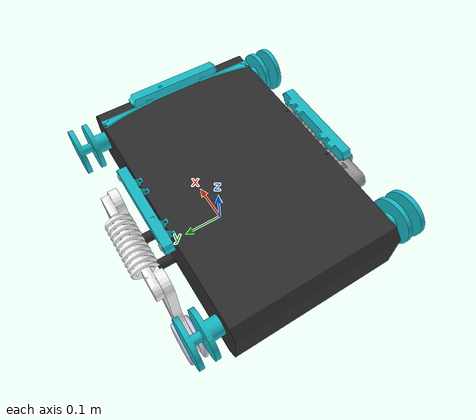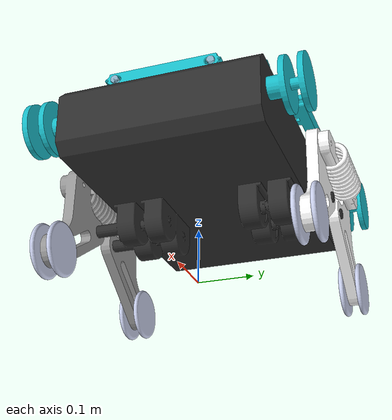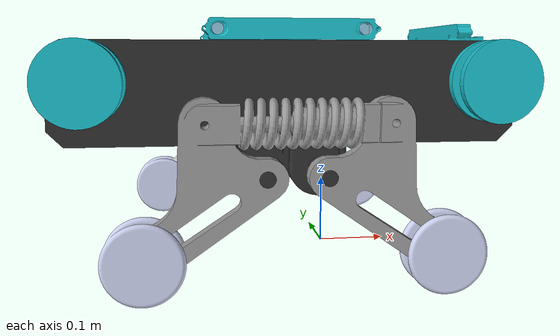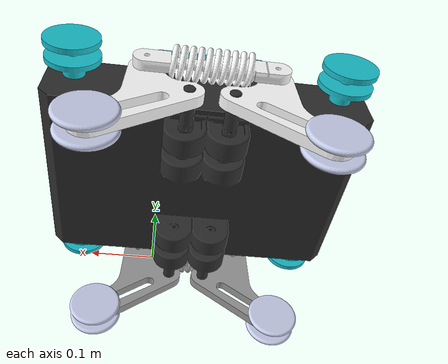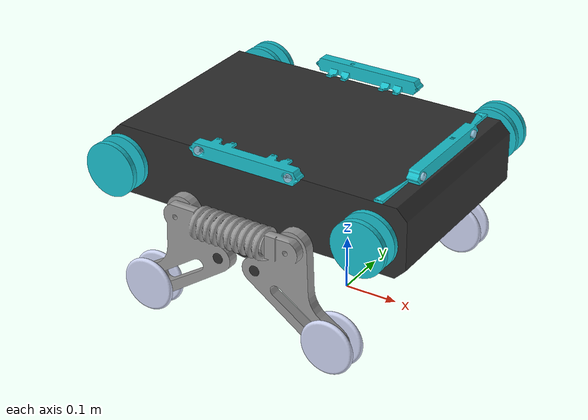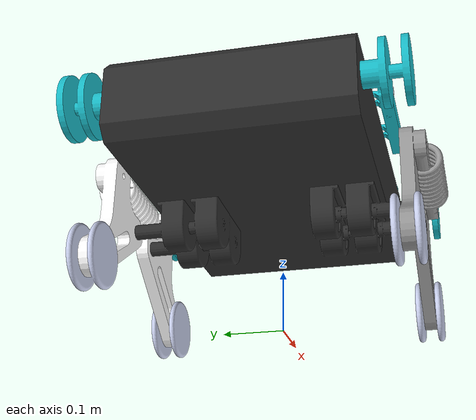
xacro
<?xml version="1.0"?>

<robot name="d-grape" xmlns:xacro="http://ros.org/wiki/xacro">

  <!-- Arguments -->
  <xacro:arg name="sim" default="true" />
  <xacro:arg name="robot_name" default="d-grape" />
  <xacro:arg name="namespace" default="" />
  <xacro:arg name="frame_prefix" default="" />

  <!-- Robot model -->
  <xacro:include filename="$(find d-grape_description)/models/urdf/d-grape_model.urdf.xacro" />

  <!-- Simulation hardware interface -->
  <xacro:if value="$(arg sim)">
    <xacro:include filename="$(find d-grape_description)/models/urdf/d-grape_sim_hardware_interface.urdf.xacro" />
  </xacro:if>

</robot>

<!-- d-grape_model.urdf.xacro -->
<robot  xmlns:xacro="http://www.ros.org/wiki/xacro">
  <xacro:property name="mesh_dir" value="$(find d-grape_description)/models/meshes" />

  <link
    name="base_link">
    <inertial>
      <origin
        xyz="-0.075544 4.6294E-10 0.18462"
        rpy="0 0 0" />
      <mass
        value="5.0268" />
      <inertia
        ixx="0.041093"
        ixy="1.0616E-07"
        ixz="2.4482E-06"
        iyy="0.074544"
        iyz="-6.2185E-11"
        izz="0.10285" />
    </inertial>
    <visual>
      <origin
        xyz="0 0 0"
        rpy="0 0 0" />
      <geometry>
        <mesh
          filename="file://${mesh_dir}/base_link.STL" />
      </geometry>
      <material
        name="">
        <color
          rgba="0.18 0.18 0.18 1" />
      </material>
    </visual>
    <collision>
      <origin
        xyz="0 0 0"
        rpy="0 0 0" />
      <geometry>
        <mesh
          filename="file://${mesh_dir}/base_link.STL" />
      </geometry>
    </collision>
  </link>
  <link
    name="front_cams">
    <inertial>
      <origin
        xyz="0.0019647 9.1194E-05 -0.012504"
        rpy="0 0 0" />
      <mass
        value="0.045237" />
      <inertia
        ixx="0.00015167"
        ixy="-2.9715E-08"
        ixz="1.0485E-08"
        iyy="3.4302E-06"
        iyz="2.1151E-08"
        izz="0.00015353" />
    </inertial>
    <visual>
      <origin
        xyz="0 0 0"
        rpy="0 0 0" />
      <geometry>
        <mesh
          filename="file://${mesh_dir}/front_cams.STL" />
      </geometry>
      <material
        name="">
        <color
          rgba="0.1 0.75294 0.8 1" />
      </material>
    </visual>
    <collision>
      <origin
        xyz="0 0 0"
        rpy="0 0 0" />
      <geometry>
        <mesh
          filename="file://${mesh_dir}/front_cams.STL" />
      </geometry>
    </collision>
  </link>
  <joint
    name="base_to_front_cams"
    type="fixed">
    <origin
      xyz="0.192 0 0.322286199982912"
      rpy="0 1.5707963267949 0" />
    <parent
      link="base_link" />
    <child
      link="front_cams" />
    <axis
      xyz="0 0 0" />
  </joint>
  <link
    name="f_left_camera">
    <inertial>
      <origin
        xyz="0 -1.3878E-17 -0.005"
        rpy="0 0 0" />
      <mass
        value="0.012007" />
      <inertia
        ixx="2.4715E-07"
        ixy="-3.816E-40"
        ixz="4.6171E-24"
        iyy="2.4715E-07"
        iyz="1.1692E-23"
        izz="2.9418E-07" />
    </inertial>
    <visual>
      <origin
        xyz="0 0 0"
        rpy="0 0 0" />
      <geometry>
        <mesh
          filename="file://${mesh_dir}/f_left_camera.STL" />
      </geometry>
      <material
        name="">
        <color
          rgba="0.79216 0.81961 0.93333 0.7" />
      </material>
    </visual>
    <collision>
      <origin
        xyz="0 0 0"
        rpy="0 0 0" />
      <geometry>
        <mesh
          filename="file://${mesh_dir}/f_left_camera.STL" />
      </geometry>
    </collision>
  </link>
  <joint
    name="base_to_f_left_camera"
    type="fixed">
    <origin
      xyz="0 0.089 0.003"
      rpy="0 0 0" />
    <parent
      link="front_cams" />
    <child
      link="f_left_camera" />
    <axis
      xyz="0 0 0" />
  </joint>
  <link
    name="f_right_camera">
    <inertial>
      <origin
        xyz="0 -1.3878E-17 -0.005"
        rpy="0 0 0" />
      <mass
        value="0.012007" />
      <inertia
        ixx="2.4715E-07"
        ixy="1.7858E-39"
        ixz="2.1704E-23"
        iyy="2.4715E-07"
        iyz="1.1692E-23"
        izz="2.9418E-07" />
    </inertial>
    <visual>
      <origin
        xyz="0 0 0"
        rpy="0 0 0" />
      <geometry>
        <mesh
          filename="file://${mesh_dir}/f_right_camera.STL" />
      </geometry>
      <material
        name="">
        <color
          rgba="0.79216 0.81961 0.93333 0.7" />
      </material>
    </visual>
    <collision>
      <origin
        xyz="0 0 0"
        rpy="0 0 0" />
      <geometry>
        <mesh
          filename="file://${mesh_dir}/f_right_camera.STL" />
      </geometry>
    </collision>
  </link>
  <joint
    name="base_to_f_right_camera"
    type="fixed">
    <origin
      xyz="0 -0.089 0.00300000000000003"
      rpy="0 0 0" />
    <parent
      link="front_cams" />
    <child
      link="f_right_camera" />
    <axis
      xyz="0 0 0" />
  </joint>
  <link
    name="left_cams">
    <inertial>
      <origin
        xyz="0.0010352 9.9915E-05 -0.011347"
        rpy="0 0 0" />
      <mass
        value="0.041289" />
      <inertia
        ixx="0.0001416"
        ixy="-2.9715E-08"
        ixz="2.0623E-08"
        iyy="3.3857E-06"
        iyz="2.1151E-08"
        izz="0.00014352" />
    </inertial>
    <visual>
      <origin
        xyz="0 0 0"
        rpy="0 0 0" />
      <geometry>
        <mesh
          filename="file://${mesh_dir}/left_cams.STL" />
      </geometry>
      <material
        name="">
        <color
          rgba="0.1 0.75294 0.8 1" />
      </material>
    </visual>
    <collision>
      <origin
        xyz="0 0 0"
        rpy="0 0 0" />
      <geometry>
        <mesh
          filename="file://${mesh_dir}/left_cams.STL" />
      </geometry>
    </collision>
  </link>
  <joint
    name="base_to_left_cams"
    type="fixed">
    <origin
      xyz="-0.0777499999999999 0.2095 0.322286199982912"
      rpy="1.5707963267949 1.5707963267949 3.14" />
    <parent
      link="base_link" />
    <child
      link="left_cams" />
    <axis
      xyz="0 0 0" />
  </joint>
  <link
    name="l_left_camera">
    <inertial>
      <origin
        xyz="0 0 -0.005"
        rpy="0 0 0" />
      <mass
        value="0.012007" />
      <inertia
        ixx="2.4715E-07"
        ixy="6.8217E-24"
        ixz="-1.0303E-23"
        iyy="2.4715E-07"
        iyz="-3.2216E-24"
        izz="2.9418E-07" />
    </inertial>
    <visual>
      <origin
        xyz="0 0 0"
        rpy="0 0 0" />
      <geometry>
        <mesh
          filename="file://${mesh_dir}/l_left_camera.STL" />
      </geometry>
      <material
        name="">
        <color
          rgba="0.79216 0.81961 0.93333 0.7" />
      </material>
    </visual>
    <collision>
      <origin
        xyz="0 0 0"
        rpy="0 0 0" />
      <geometry>
        <mesh
          filename="file://${mesh_dir}/l_left_camera.STL" />
      </geometry>
    </collision>
  </link>
  <joint
    name="base_to_l_left_camera"
    type="fixed">
    <origin
      xyz="0 0.089 0.00300000000000003"
      rpy="0 0 0" />
    <parent
      link="left_cams" />
    <child
      link="l_left_camera" />
    <axis
      xyz="0 0 1" />
  </joint>
  <link
    name="l_right_camera">
    <inertial>
      <origin
        xyz="0 0 -0.005"
        rpy="0 0 0" />
      <mass
        value="0.012007" />
      <inertia
        ixx="2.4715E-07"
        ixy="6.8217E-24"
        ixz="-1.0303E-23"
        iyy="2.4715E-07"
        iyz="-5.1795E-24"
        izz="2.9418E-07" />
    </inertial>
    <visual>
      <origin
        xyz="0 0 0"
        rpy="0 0 0" />
      <geometry>
        <mesh
          filename="file://${mesh_dir}/l_right_camera.STL" />
      </geometry>
      <material
        name="">
        <color
          rgba="0.79216 0.81961 0.93333 0.7" />
      </material>
    </visual>
    <collision>
      <origin
        xyz="0 0 0"
        rpy="0 0 0" />
      <geometry>
        <mesh
          filename="file://${mesh_dir}/l_right_camera.STL" />
      </geometry>
    </collision>
  </link>
  <joint
    name="base_to_l_right_camera"
    type="fixed">
    <origin
      xyz="0 -0.0890000000000001 0.00300000000000003"
      rpy="0 0 0" />
    <parent
      link="left_cams" />
    <child
      link="l_right_camera" />
    <axis
      xyz="0 0 0" />
  </joint>
  <link
    name="right_cams">
    <inertial>
      <origin
        xyz="0.0010352 9.9915E-05 -0.011347"
        rpy="0 0 0" />
      <mass
        value="0.041289" />
      <inertia
        ixx="0.0001416"
        ixy="-2.9715E-08"
        ixz="2.0623E-08"
        iyy="3.3857E-06"
        iyz="2.1151E-08"
        izz="0.00014352" />
    </inertial>
    <visual>
      <origin
        xyz="0 0 0"
        rpy="0 0 0" />
      <geometry>
        <mesh
          filename="file://${mesh_dir}/right_cams.STL" />
      </geometry>
      <material
        name="">
        <color
          rgba="0.1 0.75294 0.8 1" />
      </material>
    </visual>
    <collision>
      <origin
        xyz="0 0 0"
        rpy="0 0 0" />
      <geometry>
        <mesh
          filename="file://${mesh_dir}/right_cams.STL" />
      </geometry>
    </collision>
  </link>
  <joint
    name="base_to_right_cams"
    type="fixed">
    <origin
      xyz="-0.0777499999999999 -0.2095 0.322286199982912"
      rpy="1.5707963267949 -1.5707963267949 0" />
    <parent
      link="base_link" />
    <child
      link="right_cams" />
    <axis
      xyz="0 0 0" />
  </joint>
  <link
    name="r_left_camera">
    <inertial>
      <origin
        xyz="0 1.7347E-18 -0.005"
        rpy="0 0 0" />
      <mass
        value="0.012007" />
      <inertia
        ixx="2.4715E-07"
        ixy="-4.3013E-24"
        ixz="1.26E-39"
        iyy="2.4715E-07"
        iyz="-5.3767E-25"
        izz="2.9418E-07" />
    </inertial>
    <visual>
      <origin
        xyz="0 0 0"
        rpy="0 0 0" />
      <geometry>
        <mesh
          filename="file://${mesh_dir}/r_left_camera.STL" />
      </geometry>
      <material
        name="">
        <color
          rgba="0.79216 0.81961 0.93333 0.7" />
      </material>
    </visual>
    <collision>
      <origin
        xyz="0 0 0"
        rpy="0 0 0" />
      <geometry>
        <mesh
          filename="file://${mesh_dir}/r_left_camera.STL" />
      </geometry>
    </collision>
  </link>
  <joint
    name="base_to_r_left_camera"
    type="fixed">
    <origin
      xyz="0 0.089 0.003"
      rpy="0 0 0" />
    <parent
      link="right_cams" />
    <child
      link="r_left_camera" />
    <axis
      xyz="0 0 0" />
  </joint>
  <link
    name="r_right_camera">
    <inertial>
      <origin
        xyz="0 0 -0.005"
        rpy="0 0 0" />
      <mass
        value="0.012007" />
      <inertia
        ixx="2.4715E-07"
        ixy="-4.3013E-24"
        ixz="1.26E-39"
        iyy="2.4715E-07"
        iyz="-5.3767E-25"
        izz="2.9418E-07" />
    </inertial>
    <visual>
      <origin
        xyz="0 0 0"
        rpy="0 0 0" />
      <geometry>
        <mesh
          filename="file://${mesh_dir}/r_right_camera.STL" />
      </geometry>
      <material
        name="">
        <color
          rgba="0.79216 0.81961 0.93333 0.7" />
      </material>
    </visual>
    <collision>
      <origin
        xyz="0 0 0"
        rpy="0 0 0" />
      <geometry>
        <mesh
          filename="file://${mesh_dir}/r_right_camera.STL" />
      </geometry>
    </collision>
  </link>
  <joint
    name="base_to_r_right_camera"
    type="fixed">
    <origin
      xyz="0 -0.089 0.003"
      rpy="0 0 0" />
    <parent
      link="right_cams" />
    <child
      link="r_right_camera" />
    <axis
      xyz="0 0 0" />
  </joint>
  <link
    name="right_track">
    <inertial>
      <origin
        xyz="0.00094237 0.016551 -0.069043"
        rpy="0 0 0" />
      <mass
        value="5.9783" />
      <inertia
        ixx="0.016351"
        ixy="-1.2437E-06"
        ixz="-1.5016E-05"
        iyy="0.029644"
        iyz="-7.5658E-10"
        izz="0.013902" />
    </inertial>
    <visual>
      <origin
        xyz="0 0 0"
        rpy="0 0 0" />
      <geometry>
        <mesh
          filename="file://${mesh_dir}/right_track.STL" />
      </geometry>
      <material
        name="">
        <color
          rgba="0.6 0.6 0.6 1" />
      </material>
    </visual>
    <collision>
      <origin
        xyz="0 0 0"
        rpy="0 0 0" />
      <geometry>
        <mesh
          filename="file://${mesh_dir}/right_track.STL" />
      </geometry>
    </collision>
  </link>
  <joint
    name="base_to_right_track"
    type="fixed">
    <origin
      xyz="-0.0739997005257136 -0.249507806907019 0.213351418532562"
      rpy="0 0 0" />
    <parent
      link="base_link" />
    <child
      link="right_track" />
    <axis
      xyz="0 0 0" />
  </joint>
  <link
    name="right_star">
    <inertial>
      <origin
        xyz="0 0 -0.0070062"
        rpy="0 0 0" />
      <mass
        value="0.20295" />
      <inertia
        ixx="0.0001891"
        ixy="-1.409E-20"
        ixz="-3.7778E-20"
        iyy="0.0001891"
        iyz="3.0992E-21"
        izz="0.00020449" />
    </inertial>
    <visual>
      <origin
        xyz="0 0 0"
        rpy="0 0 0" />
      <geometry>
        <mesh
          filename="file://${mesh_dir}/right_star.STL" />
      </geometry>
      <material
        name="">
        <color
          rgba="0.1 0.75 0.8 1" />
      </material>
    </visual>
    <collision>
      <origin
        xyz="0 0 0"
        rpy="0 0 0" />
      <geometry>
        <mesh
          filename="file://${mesh_dir}/right_star.STL" />
      </geometry>
    </collision>
  </link>
  <joint
    name="base_to_right_star"
    type="revolute">
    <origin
      xyz="0.241 0.018008 0.046435"
      rpy="1.5708 0 0" />
    <parent
      link="right_track" />
    <child
      link="right_star" />
    <axis
      xyz="0 0 1" />
    <limit
      lower="0"
      upper="0"
      effort="0"
      velocity="0" />
  </joint>
  <link
    name="right_f_roller">
    <inertial>
      <origin
        xyz="-1.3878E-17 -6.9389E-18 5.5511E-17"
        rpy="0 0 0" />
      <mass
        value="0.16217" />
      <inertia
        ixx="0.00013098"
        ixy="2.2645E-20"
        ixz="7.2762E-21"
        iyy="0.00013098"
        iyz="1.326E-20"
        izz="0.00018157" />
    </inertial>
    <visual>
      <origin
        xyz="0 0 0"
        rpy="0 0 0" />
      <geometry>
        <mesh
          filename="file://${mesh_dir}/right_f_roller.STL" />
      </geometry>
      <material
        name="">
        <color
          rgba="0.79216 0.81961 0.93333 1" />
      </material>
    </visual>
    <collision>
      <origin
        xyz="0 0 0"
        rpy="0 0 0" />
      <geometry>
        <mesh
          filename="file://${mesh_dir}/right_f_roller.STL" />
      </geometry>
    </collision>
  </link>
  <joint
    name="base_to_right_f_roller"
    type="revolute">
    <origin
      xyz="0.18291 0.019308 -0.16335"
      rpy="1.5708 0 0" />
    <parent
      link="right_track" />
    <child
      link="right_f_roller" />
    <axis
      xyz="0 0 1" />
    <limit
      lower="0"
      upper="0"
      effort="0"
      velocity="0" />
    <mimic
      joint="base_to_right_star"
      multiplier="1"
      offset="0" />
  </joint>
  <link
    name="right_b_roller">
    <inertial>
      <origin
        xyz="0 0 0"
        rpy="0 0 0" />
      <mass
        value="0.162168751410081" />
      <inertia
        ixx="0.000130984876872724"
        ixy="3.10578747326577E-22"
        ixz="-2.26769342200741E-21"
        iyy="0.000130984876872724"
        iyz="-2.32934060494928E-22"
        izz="0.000181568887144003" />
    </inertial>
    <visual>
      <origin
        xyz="0 0 0"
        rpy="0 0 0" />
      <geometry>
        <mesh
          filename="file://${mesh_dir}/right_b_roller.STL" />
      </geometry>
      <material
        name="">
        <color
          rgba="0.792156862745098 0.819607843137255 0.933333333333333 1" />
      </material>
    </visual>
    <collision>
      <origin
        xyz="0 0 0"
        rpy="0 0 0" />
      <geometry>
        <mesh
          filename="file://${mesh_dir}/right_b_roller.STL" />
      </geometry>
    </collision>
  </link>
  <joint
    name="base_to_right_b_roller"
    type="revolute">
    <origin
      xyz="-0.18291 0.019308 -0.16335"
      rpy="1.5708 0 0" />
    <parent
      link="right_track" />
    <child
      link="right_b_roller" />
    <axis
      xyz="0 0 -1" />
    <limit
      lower="0"
      upper="0"
      effort="0"
      velocity="0" />
    <mimic
      joint="base_to_right_star"
      multiplier="1"
      offset="0" />
  </joint>
  <link
    name="right_roller_star">
    <inertial>
      <origin
        xyz="-5.5511E-17 0 -0.0070062"
        rpy="0 0 0" />
      <mass
        value="0.20295" />
      <inertia
        ixx="0.0001891"
        ixy="-8.3168E-20"
        ixz="-5.9121E-21"
        iyy="0.0001891"
        iyz="-1.1833E-22"
        izz="0.00020449" />
    </inertial>
    <visual>
      <origin
        xyz="0 0 0"
        rpy="0 0 0" />
      <geometry>
        <mesh
          filename="file://${mesh_dir}/right_roller_star.STL" />
      </geometry>
      <material
        name="">
        <color
          rgba="0.1 0.75 0.8 1" />
      </material>
    </visual>
    <collision>
      <origin
        xyz="0 0 0"
        rpy="0 0 0" />
      <geometry>
        <mesh
          filename="file://${mesh_dir}/right_roller_star.STL" />
      </geometry>
    </collision>
  </link>
  <joint
    name="base_to_right_roller_star"
    type="revolute">
    <origin
      xyz="-0.249 0.018008 0.046435"
      rpy="1.5708 0 0" />
    <parent
      link="right_track" />
    <child
      link="right_roller_star" />
    <axis
      xyz="0 0 1" />
    <limit
      lower="0"
      upper="0"
      effort="0"
      velocity="0" />
    <mimic
      joint="base_to_right_star"
      multiplier="1"
      offset="0" />
  </joint>
  <link
    name="left_track">
    <inertial>
      <origin
        xyz="0 0 0"
        rpy="0 0 0" />
      <mass
        value="0" />
      <inertia
        ixx="0"
        ixy="0"
        ixz="0"
        iyy="0"
        iyz="0"
        izz="0" />
    </inertial>
    <visual>
      <origin
        xyz="0 0 0"
        rpy="0 0 0" />
      <geometry>
        <mesh
          filename="file://${mesh_dir}/left_track.STL" />
      </geometry>
      <material
        name="">
        <color
          rgba="1 1 1 1" />
      </material>
    </visual>
    <collision>
      <origin
        xyz="0 0 0"
        rpy="0 0 0" />
      <geometry>
        <mesh
          filename="file://${mesh_dir}/left_track.STL" />
      </geometry>
    </collision>
  </link>
  <joint
    name="base_to_left_track"
    type="fixed">
    <origin
      xyz="-0.0740002994742864 0.247507806907019 0.213351418532561"
      rpy="0 0 0" />
    <parent
      link="base_link" />
    <child
      link="left_track" />
    <axis
      xyz="0 0 0" />
  </joint>
  <link
    name="left_star">
    <inertial>
      <origin
        xyz="2.7756E-17 0 -0.0070062"
        rpy="0 0 0" />
      <mass
        value="0.20295" />
      <inertia
        ixx="0.0001891"
        ixy="-2.0993E-20"
        ixz="-4.9262E-21"
        iyy="0.0001891"
        iyz="3.5204E-21"
        izz="0.00020449" />
    </inertial>
    <visual>
      <origin
        xyz="0 0 0"
        rpy="0 0 0" />
      <geometry>
        <mesh
          filename="file://${mesh_dir}/left_star.STL" />
      </geometry>
      <material
        name="">
        <color
          rgba="0.1 0.75 0.8 1" />
      </material>
    </visual>
    <collision>
      <origin
        xyz="0 0 0"
        rpy="0 0 0" />
      <geometry>
        <mesh
          filename="file://${mesh_dir}/left_star.STL" />
      </geometry>
    </collision>
  </link>
  <joint
    name="base_to_left_star"
    type="revolute">
    <origin
      xyz="0.241 -0.016008 0.046435"
      rpy="-1.5708 0 0" />
    <parent
      link="left_track" />
    <child
      link="left_star" />
    <axis
      xyz="0 0 1" />
    <limit
      lower="0"
      upper="0"
      effort="0"
      velocity="0" />
  </joint>
  <link
    name="left_f_roller">
    <inertial>
      <origin
        xyz="2.77555756156289E-17 -6.93889390390723E-18 -5.55111512312578E-17"
        rpy="0 0 0" />
      <mass
        value="0.162168751410081" />
      <inertia
        ixx="0.000130984876872724"
        ixy="1.41960047409174E-21"
        ixz="-1.63127126972582E-21"
        iyy="0.000130984876872724"
        iyz="-8.47668781941742E-21"
        izz="0.000181568887144003" />
    </inertial>
    <visual>
      <origin
        xyz="0 0 0"
        rpy="0 0 0" />
      <geometry>
        <mesh
          filename="file://${mesh_dir}/left_f_roller.STL" />
      </geometry>
      <material
        name="">
        <color
          rgba="0.792156862745098 0.819607843137255 0.933333333333333 1" />
      </material>
    </visual>
    <collision>
      <origin
        xyz="0 0 0"
        rpy="0 0 0" />
      <geometry>
        <mesh
          filename="file://${mesh_dir}/left_f_roller.STL" />
      </geometry>
    </collision>
  </link>
  <joint
    name="base_to_left_f_roller"
    type="revolute">
    <origin
      xyz="0.18291 -0.019308 -0.16335"
      rpy="-1.5708 0 0" />
    <parent
      link="left_track" />
    <child
      link="left_f_roller" />
    <axis
      xyz="0 0 -1" />
    <limit
      lower="0"
      upper="0"
      effort="0"
      velocity="0" />
    <mimic
      joint="base_to_left_star"
      multiplier="1"
      offset="0" />
  </joint>
  <link
    name="left_b_roller">
    <inertial>
      <origin
        xyz="0 0 2.77555756156289E-17"
        rpy="0 0 0" />
      <mass
        value="0.162168751410081" />
      <inertia
        ixx="0.000130984876872724"
        ixy="-8.69620492514414E-21"
        ixz="-7.85362640748906E-21"
        iyy="0.000130984876872724"
        iyz="-2.67479521170757E-21"
        izz="0.000181568887144003" />
    </inertial>
    <visual>
      <origin
        xyz="0 0 0"
        rpy="0 0 0" />
      <geometry>
        <mesh
          filename="file://${mesh_dir}/left_b_roller.STL" />
      </geometry>
      <material
        name="">
        <color
          rgba="0.792156862745098 0.819607843137255 0.933333333333333 1" />
      </material>
    </visual>
    <collision>
      <origin
        xyz="0 0 0"
        rpy="0 0 0" />
      <geometry>
        <mesh
          filename="file://${mesh_dir}/left_b_roller.STL" />
      </geometry>
    </collision>
  </link>
  <joint
    name="base_to_left_b_roller"
    type="revolute">
    <origin
      xyz="-0.18291 -0.019308 -0.16335"
      rpy="-1.5708 0 0" />
    <parent
      link="left_track" />
    <child
      link="left_b_roller" />
    <axis
      xyz="0 0 -1" />
    <limit
      lower="0"
      upper="0"
      effort="0"
      velocity="0" />
    <mimic
      joint="base_to_left_star"
      multiplier="1"
      offset="0" />
  </joint>
  <link
    name="left_roller_star">
    <inertial>
      <origin
        xyz="0 0 -0.0070062"
        rpy="0 0 0" />
      <mass
        value="0.20295" />
      <inertia
        ixx="0.0001891"
        ixy="-1.6928E-20"
        ixz="-4.9262E-21"
        iyy="0.0001891"
        iyz="3.5204E-21"
        izz="0.00020449" />
    </inertial>
    <visual>
      <origin
        xyz="0 0 0"
        rpy="0 0 0" />
      <geometry>
        <mesh
          filename="file://${mesh_dir}/left_roller_star.STL" />
      </geometry>
      <material
        name="">
        <color
          rgba="0.1 0.75 0.8 1" />
      </material>
    </visual>
    <collision>
      <origin
        xyz="0 0 0"
        rpy="0 0 0" />
      <geometry>
        <mesh
          filename="file://${mesh_dir}/left_roller_star.STL" />
      </geometry>
    </collision>
  </link>
  <joint
    name="base_to_left_roller_star"
    type="revolute">
    <origin
      xyz="-0.249 -0.016008 0.046435"
      rpy="-1.5708 0 0" />
    <parent
      link="left_track" />
    <child
      link="left_roller_star" />
    <axis
      xyz="0 0 1" />
    <limit
      lower="0"
      upper="0"
      effort="0"
      velocity="0" />
    <mimic
      joint="base_to_left_star"
      multiplier="1"
      offset="0" />
  </joint>
</robot>
